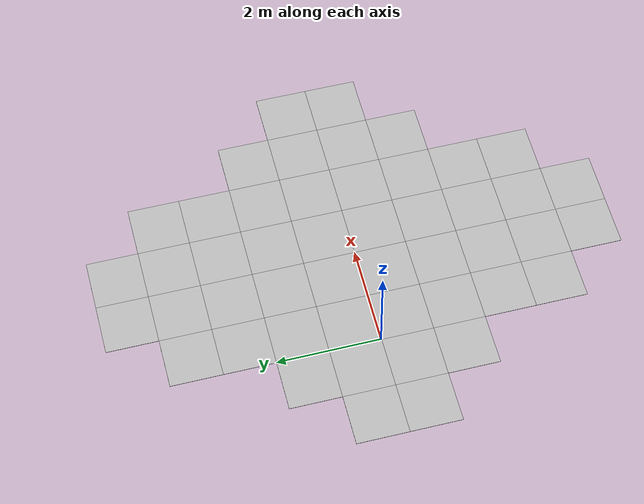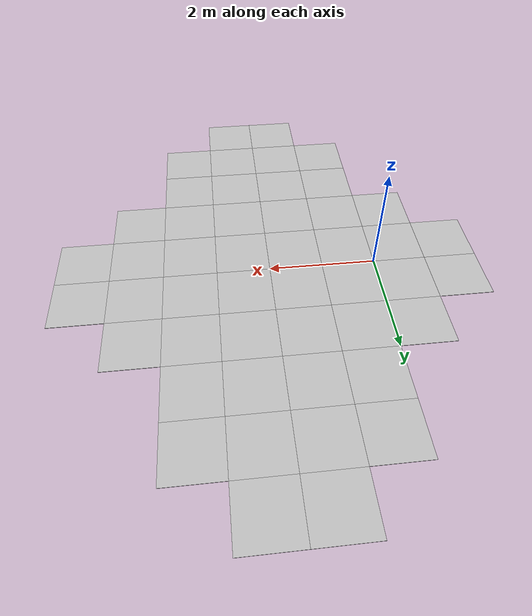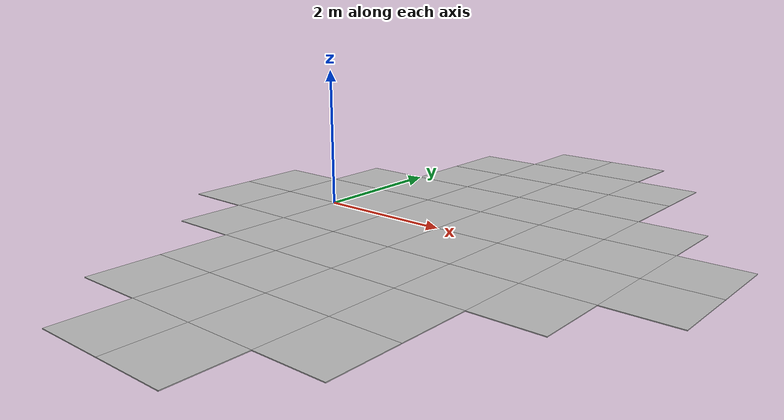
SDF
<sdf version="1.6">
 <world name="default">
  <light name="sun" type="directional">
   <pose>0 0 10 0 -0 0</pose>
   <diffuse>0.8 0.8 0.8 1</diffuse>
   <specular>0.1 0.1 0.1 1</specular>
   <attenuation>
    <range>1000</range>
    <constant>0.9</constant>
    <linear>0.01</linear>
    <quadratic>0.001</quadratic>
   </attenuation>
   <direction>-0.5 0.5 -1</direction>
  </light>
  <gravity>0 0 0</gravity>
  <magnetic_field>6e-06 2.3e-05 -4.2e-05</magnetic_field>
  <atmosphere type="adiabatic"/>
  <physics name="default_physics" default="0" type="ode">
   <max_step_size>0.001</max_step_size>
   <real_time_factor>1</real_time_factor>
   <real_time_update_rate>1000</real_time_update_rate>
  </physics>
  <scene><ambient>0.4 0.4 0.4 1</ambient><background>0.7 0.7 0.7 1</background><shadows>1</shadows></scene>
  <spherical_coordinates>
   <surface_model>EARTH_WGS84</surface_model>
   <latitude_deg>0</latitude_deg>
   <longitude_deg>0</longitude_deg>
   <elevation>0</elevation>
   <heading_deg>0</heading_deg>
  </spherical_coordinates>
  <model name="mud_box">
   <static>1</static>
   <link name="link">
    <collision name="collision"><geometry><box><size>4 4 0.01</size></box></geometry></collision>
    <visual name="visual_1">
     <pose>-0.5 0.5 0 0 -0 0</pose>
     <cast_shadows>0</cast_shadows>
     <geometry><box><size>1 1 0.01</size></box></geometry>
     <material>
      <script>
       <uri>model://brick_box_3x1x3/materials/scripts</uri>
       <uri>model://brick_box_3x1x3/materials/textures</uri>
       <name>BrickBox/Diffuse</name>
      </script>
     </material>
    </visual>
    <visual name="visual_2">
     <pose>0.5 0.5 0 0 -0 0</pose>
     <cast_shadows>0</cast_shadows>
     <geometry><box><size>1 1 0.01</size></box></geometry>
     <material>
      <script>
       <uri>model://brick_box_3x1x3/materials/scripts</uri>
       <uri>model://brick_box_3x1x3/materials/textures</uri>
       <name>BrickBox/Diffuse</name>
      </script>
     </material>
    </visual>
    <visual name="visual_3">
     <pose>0.5 -0.5 0 0 -0 0</pose>
     <cast_shadows>0</cast_shadows>
     <geometry><box><size>1 1 0.01</size></box></geometry>
     <material>
      <script>
       <uri>model://brick_box_3x1x3/materials/scripts</uri>
       <uri>model://brick_box_3x1x3/materials/textures</uri>
       <name>BrickBox/Diffuse</name>
      </script>
     </material>
    </visual>
    <visual name="visual_4">
     <pose>-0.5 -0.5 0 0 -0 0</pose>
     <cast_shadows>0</cast_shadows>
     <geometry><box><size>1 1 0.01</size></box></geometry>
     <material>
      <script>
       <uri>model://brick_box_3x1x3/materials/scripts</uri>
       <uri>model://brick_box_3x1x3/materials/textures</uri>
       <name>BrickBox/Diffuse</name>
      </script>
     </material>
    </visual>
    <visual name="visual_5">
     <pose>-1.5 0.5 0 0 -0 0</pose>
     <cast_shadows>0</cast_shadows>
     <geometry><box><size>1 1 0.01</size></box></geometry>
     <material>
      <script>
       <uri>model://brick_box_3x1x3/materials/scripts</uri>
       <uri>model://brick_box_3x1x3/materials/textures</uri>
       <name>BrickBox/Diffuse</name>
      </script>
     </material>
    </visual>
    <visual name="visual_6">
     <pose>0.5 -1.5 0 0 -0 0</pose>
     <cast_shadows>0</cast_shadows>
     <geometry><box><size>1 1 0.01</size></box></geometry>
     <material>
      <script>
       <uri>model://brick_box_3x1x3/materials/scripts</uri>
       <uri>model://brick_box_3x1x3/materials/textures</uri>
       <name>BrickBox/Diffuse</name>
      </script>
     </material>
    </visual>
    <visual name="visual_7">
     <pose>1.5 0.5 0 0 -0 0</pose>
     <cast_shadows>0</cast_shadows>
     <geometry><box><size>1 1 0.01</size></box></geometry>
     <material>
      <script>
       <uri>model://brick_box_3x1x3/materials/scripts</uri>
       <uri>model://brick_box_3x1x3/materials/textures</uri>
       <name>BrickBox/Diffuse</name>
      </script>
     </material>
    </visual>
    <visual name="visual_8">
     <pose>0.5 1.5 0 0 -0 0</pose>
     <cast_shadows>0</cast_shadows>
     <geometry><box><size>1 1 0.01</size></box></geometry>
     <material>
      <script>
       <uri>model://brick_box_3x1x3/materials/scripts</uri>
       <uri>model://brick_box_3x1x3/materials/textures</uri>
       <name>BrickBox/Diffuse</name>
      </script>
     </material>
    </visual>
    <visual name="visual_9">
     <pose>-1.5 -0.5 0 0 -0 0</pose>
     <cast_shadows>0</cast_shadows>
     <geometry><box><size>1 1 0.01</size></box></geometry>
     <material>
      <script>
       <uri>model://brick_box_3x1x3/materials/scripts</uri>
       <uri>model://brick_box_3x1x3/materials/textures</uri>
       <name>BrickBox/Diffuse</name>
      </script>
     </material>
    </visual>
    <visual name="visual_10">
     <pose>-0.5 -1.5 0 0 -0 0</pose>
     <cast_shadows>0</cast_shadows>
     <geometry><box><size>1 1 0.01</size></box></geometry>
     <material>
      <script>
       <uri>model://brick_box_3x1x3/materials/scripts</uri>
       <uri>model://brick_box_3x1x3/materials/textures</uri>
       <name>BrickBox/Diffuse</name>
      </script>
     </material>
    </visual>
    <visual name="visual_11">
     <pose>1.5 -0.5 0 0 -0 0</pose>
     <cast_shadows>0</cast_shadows>
     <geometry><box><size>1 1 0.01</size></box></geometry>
     <material>
      <script>
       <uri>model://brick_box_3x1x3/materials/scripts</uri>
       <uri>model://brick_box_3x1x3/materials/textures</uri>
       <name>BrickBox/Diffuse</name>
      </script>
     </material>
    </visual>
    <visual name="visual_12">
     <pose>-0.5 1.5 0 0 -0 0</pose>
     <cast_shadows>0</cast_shadows>
     <geometry><box><size>1 1 0.01</size></box></geometry>
     <material>
      <script>
       <uri>model://brick_box_3x1x3/materials/scripts</uri>
       <uri>model://brick_box_3x1x3/materials/textures</uri>
       <name>BrickBox/Diffuse</name>
      </script>
     </material>
    </visual>
   </link>
  </model>
  <model name="mud_box_clone">
   <static>1</static>
   <link name="link">
    <collision name="collision"><geometry><box><size>4 4 0.01</size></box></geometry></collision>
    <visual name="visual_1">
     <pose>-0.5 0.5 0 0 -0 0</pose>
     <cast_shadows>0</cast_shadows>
     <geometry><box><size>1 1 0.01</size></box></geometry>
     <material>
      <script>
       <uri>model://brick_box_3x1x3/materials/scripts</uri>
       <uri>model://brick_box_3x1x3/materials/textures</uri>
       <name>BrickBox/Diffuse</name>
      </script>
     </material>
    </visual>
    <visual name="visual_2">
     <pose>0.5 0.5 0 0 -0 0</pose>
     <cast_shadows>0</cast_shadows>
     <geometry><box><size>1 1 0.01</size></box></geometry>
     <material>
      <script>
       <uri>model://brick_box_3x1x3/materials/scripts</uri>
       <uri>model://brick_box_3x1x3/materials/textures</uri>
       <name>BrickBox/Diffuse</name>
      </script>
     </material>
    </visual>
    <visual name="visual_3">
     <pose>0.5 -0.5 0 0 -0 0</pose>
     <cast_shadows>0</cast_shadows>
     <geometry><box><size>1 1 0.01</size></box></geometry>
     <material>
      <script>
       <uri>model://brick_box_3x1x3/materials/scripts</uri>
       <uri>model://brick_box_3x1x3/materials/textures</uri>
       <name>BrickBox/Diffuse</name>
      </script>
     </material>
    </visual>
    <visual name="visual_4">
     <pose>-0.5 -0.5 0 0 -0 0</pose>
     <cast_shadows>0</cast_shadows>
     <geometry><box><size>1 1 0.01</size></box></geometry>
     <material>
      <script>
       <uri>model://brick_box_3x1x3/materials/scripts</uri>
       <uri>model://brick_box_3x1x3/materials/textures</uri>
       <name>BrickBox/Diffuse</name>
      </script>
     </material>
    </visual>
    <visual name="visual_5">
     <pose>-1.5 0.5 0 0 -0 0</pose>
     <cast_shadows>0</cast_shadows>
     <geometry><box><size>1 1 0.01</size></box></geometry>
     <material>
      <script>
       <uri>model://brick_box_3x1x3/materials/scripts</uri>
       <uri>model://brick_box_3x1x3/materials/textures</uri>
       <name>BrickBox/Diffuse</name>
      </script>
     </material>
    </visual>
    <visual name="visual_6">
     <pose>0.5 -1.5 0 0 -0 0</pose>
     <cast_shadows>0</cast_shadows>
     <geometry><box><size>1 1 0.01</size></box></geometry>
     <material>
      <script>
       <uri>model://brick_box_3x1x3/materials/scripts</uri>
       <uri>model://brick_box_3x1x3/materials/textures</uri>
       <name>BrickBox/Diffuse</name>
      </script>
     </material>
    </visual>
    <visual name="visual_7">
     <pose>1.5 0.5 0 0 -0 0</pose>
     <cast_shadows>0</cast_shadows>
     <geometry><box><size>1 1 0.01</size></box></geometry>
     <material>
      <script>
       <uri>model://brick_box_3x1x3/materials/scripts</uri>
       <uri>model://brick_box_3x1x3/materials/textures</uri>
       <name>BrickBox/Diffuse</name>
      </script>
     </material>
    </visual>
    <visual name="visual_8">
     <pose>0.5 1.5 0 0 -0 0</pose>
     <cast_shadows>0</cast_shadows>
     <geometry><box><size>1 1 0.01</size></box></geometry>
     <material>
      <script>
       <uri>model://brick_box_3x1x3/materials/scripts</uri>
       <uri>model://brick_box_3x1x3/materials/textures</uri>
       <name>BrickBox/Diffuse</name>
      </script>
     </material>
    </visual>
    <visual name="visual_9">
     <pose>-1.5 -0.5 0 0 -0 0</pose>
     <cast_shadows>0</cast_shadows>
     <geometry><box><size>1 1 0.01</size></box></geometry>
     <material>
      <script>
       <uri>model://brick_box_3x1x3/materials/scripts</uri>
       <uri>model://brick_box_3x1x3/materials/textures</uri>
       <name>BrickBox/Diffuse</name>
      </script>
     </material>
    </visual>
    <visual name="visual_10">
     <pose>-0.5 -1.5 0 0 -0 0</pose>
     <cast_shadows>0</cast_shadows>
     <geometry><box><size>1 1 0.01</size></box></geometry>
     <material>
      <script>
       <uri>model://brick_box_3x1x3/materials/scripts</uri>
       <uri>model://brick_box_3x1x3/materials/textures</uri>
       <name>BrickBox/Diffuse</name>
      </script>
     </material>
    </visual>
    <visual name="visual_11">
     <pose>1.5 -0.5 0 0 -0 0</pose>
     <cast_shadows>0</cast_shadows>
     <geometry><box><size>1 1 0.01</size></box></geometry>
     <material>
      <script>
       <uri>model://brick_box_3x1x3/materials/scripts</uri>
       <uri>model://brick_box_3x1x3/materials/textures</uri>
       <name>BrickBox/Diffuse</name>
      </script>
     </material>
    </visual>
    <visual name="visual_12">
     <pose>-0.5 1.5 0 0 -0 0</pose>
     <cast_shadows>0</cast_shadows>
     <geometry><box><size>1 1 0.01</size></box></geometry>
     <material>
      <script>
       <uri>model://brick_box_3x1x3/materials/scripts</uri>
       <uri>model://brick_box_3x1x3/materials/textures</uri>
       <name>BrickBox/Diffuse</name>
      </script>
     </material>
    </visual>
   </link>
   <pose>2 3 0 0 -0 0</pose>
  </model>
  <model name="mud_box_clone_0">
   <static>1</static>
   <link name="link">
    <collision name="collision"><geometry><box><size>4 4 0.01</size></box></geometry></collision>
    <visual name="visual_1">
     <pose>-0.5 0.5 0 0 -0 0</pose>
     <cast_shadows>0</cast_shadows>
     <geometry><box><size>1 1 0.01</size></box></geometry>
     <material>
      <script>
       <uri>model://brick_box_3x1x3/materials/scripts</uri>
       <uri>model://brick_box_3x1x3/materials/textures</uri>
       <name>BrickBox/Diffuse</name>
      </script>
     </material>
    </visual>
    <visual name="visual_2">
     <pose>0.5 0.5 0 0 -0 0</pose>
     <cast_shadows>0</cast_shadows>
     <geometry><box><size>1 1 0.01</size></box></geometry>
     <material>
      <script>
       <uri>model://brick_box_3x1x3/materials/scripts</uri>
       <uri>model://brick_box_3x1x3/materials/textures</uri>
       <name>BrickBox/Diffuse</name>
      </script>
     </material>
    </visual>
    <visual name="visual_3">
     <pose>0.5 -0.5 0 0 -0 0</pose>
     <cast_shadows>0</cast_shadows>
     <geometry><box><size>1 1 0.01</size></box></geometry>
     <material>
      <script>
       <uri>model://brick_box_3x1x3/materials/scripts</uri>
       <uri>model://brick_box_3x1x3/materials/textures</uri>
       <name>BrickBox/Diffuse</name>
      </script>
     </material>
    </visual>
    <visual name="visual_4">
     <pose>-0.5 -0.5 0 0 -0 0</pose>
     <cast_shadows>0</cast_shadows>
     <geometry><box><size>1 1 0.01</size></box></geometry>
     <material>
      <script>
       <uri>model://brick_box_3x1x3/materials/scripts</uri>
       <uri>model://brick_box_3x1x3/materials/textures</uri>
       <name>BrickBox/Diffuse</name>
      </script>
     </material>
    </visual>
    <visual name="visual_5">
     <pose>-1.5 0.5 0 0 -0 0</pose>
     <cast_shadows>0</cast_shadows>
     <geometry><box><size>1 1 0.01</size></box></geometry>
     <material>
      <script>
       <uri>model://brick_box_3x1x3/materials/scripts</uri>
       <uri>model://brick_box_3x1x3/materials/textures</uri>
       <name>BrickBox/Diffuse</name>
      </script>
     </material>
    </visual>
    <visual name="visual_6">
     <pose>0.5 -1.5 0 0 -0 0</pose>
     <cast_shadows>0</cast_shadows>
     <geometry><box><size>1 1 0.01</size></box></geometry>
     <material>
      <script>
       <uri>model://brick_box_3x1x3/materials/scripts</uri>
       <uri>model://brick_box_3x1x3/materials/textures</uri>
       <name>BrickBox/Diffuse</name>
      </script>
     </material>
    </visual>
    <visual name="visual_7">
     <pose>1.5 0.5 0 0 -0 0</pose>
     <cast_shadows>0</cast_shadows>
     <geometry><box><size>1 1 0.01</size></box></geometry>
     <material>
      <script>
       <uri>model://brick_box_3x1x3/materials/scripts</uri>
       <uri>model://brick_box_3x1x3/materials/textures</uri>
       <name>BrickBox/Diffuse</name>
      </script>
     </material>
    </visual>
    <visual name="visual_8">
     <pose>0.5 1.5 0 0 -0 0</pose>
     <cast_shadows>0</cast_shadows>
     <geometry><box><size>1 1 0.01</size></box></geometry>
     <material>
      <script>
       <uri>model://brick_box_3x1x3/materials/scripts</uri>
       <uri>model://brick_box_3x1x3/materials/textures</uri>
       <name>BrickBox/Diffuse</name>
      </script>
     </material>
    </visual>
    <visual name="visual_9">
     <pose>-1.5 -0.5 0 0 -0 0</pose>
     <cast_shadows>0</cast_shadows>
     <geometry><box><size>1 1 0.01</size></box></geometry>
     <material>
      <script>
       <uri>model://brick_box_3x1x3/materials/scripts</uri>
       <uri>model://brick_box_3x1x3/materials/textures</uri>
       <name>BrickBox/Diffuse</name>
      </script>
     </material>
    </visual>
    <visual name="visual_10">
     <pose>-0.5 -1.5 0 0 -0 0</pose>
     <cast_shadows>0</cast_shadows>
     <geometry><box><size>1 1 0.01</size></box></geometry>
     <material>
      <script>
       <uri>model://brick_box_3x1x3/materials/scripts</uri>
       <uri>model://brick_box_3x1x3/materials/textures</uri>
       <name>BrickBox/Diffuse</name>
      </script>
     </material>
    </visual>
    <visual name="visual_11">
     <pose>1.5 -0.5 0 0 -0 0</pose>
     <cast_shadows>0</cast_shadows>
     <geometry><box><size>1 1 0.01</size></box></geometry>
     <material>
      <script>
       <uri>model://brick_box_3x1x3/materials/scripts</uri>
       <uri>model://brick_box_3x1x3/materials/textures</uri>
       <name>BrickBox/Diffuse</name>
      </script>
     </material>
    </visual>
    <visual name="visual_12">
     <pose>-0.5 1.5 0 0 -0 0</pose>
     <cast_shadows>0</cast_shadows>
     <geometry><box><size>1 1 0.01</size></box></geometry>
     <material>
      <script>
       <uri>model://brick_box_3x1x3/materials/scripts</uri>
       <uri>model://brick_box_3x1x3/materials/textures</uri>
       <name>BrickBox/Diffuse</name>
      </script>
     </material>
    </visual>
   </link>
   <pose>4 0 0 0 -0 0</pose>
  </model>
  <model name="mud_box_clone_1">
   <static>1</static>
   <link name="link">
    <collision name="collision"><geometry><box><size>4 4 0.01</size></box></geometry></collision>
    <visual name="visual_1">
     <pose>-0.5 0.5 0 0 -0 0</pose>
     <cast_shadows>0</cast_shadows>
     <geometry><box><size>1 1 0.01</size></box></geometry>
     <material>
      <script>
       <uri>model://brick_box_3x1x3/materials/scripts</uri>
       <uri>model://brick_box_3x1x3/materials/textures</uri>
       <name>BrickBox/Diffuse</name>
      </script>
     </material>
    </visual>
    <visual name="visual_2">
     <pose>0.5 0.5 0 0 -0 0</pose>
     <cast_shadows>0</cast_shadows>
     <geometry><box><size>1 1 0.01</size></box></geometry>
     <material>
      <script>
       <uri>model://brick_box_3x1x3/materials/scripts</uri>
       <uri>model://brick_box_3x1x3/materials/textures</uri>
       <name>BrickBox/Diffuse</name>
      </script>
     </material>
    </visual>
    <visual name="visual_3">
     <pose>0.5 -0.5 0 0 -0 0</pose>
     <cast_shadows>0</cast_shadows>
     <geometry><box><size>1 1 0.01</size></box></geometry>
     <material>
      <script>
       <uri>model://brick_box_3x1x3/materials/scripts</uri>
       <uri>model://brick_box_3x1x3/materials/textures</uri>
       <name>BrickBox/Diffuse</name>
      </script>
     </material>
    </visual>
    <visual name="visual_4">
     <pose>-0.5 -0.5 0 0 -0 0</pose>
     <cast_shadows>0</cast_shadows>
     <geometry><box><size>1 1 0.01</size></box></geometry>
     <material>
      <script>
       <uri>model://brick_box_3x1x3/materials/scripts</uri>
       <uri>model://brick_box_3x1x3/materials/textures</uri>
       <name>BrickBox/Diffuse</name>
      </script>
     </material>
    </visual>
    <visual name="visual_5">
     <pose>-1.5 0.5 0 0 -0 0</pose>
     <cast_shadows>0</cast_shadows>
     <geometry><box><size>1 1 0.01</size></box></geometry>
     <material>
      <script>
       <uri>model://brick_box_3x1x3/materials/scripts</uri>
       <uri>model://brick_box_3x1x3/materials/textures</uri>
       <name>BrickBox/Diffuse</name>
      </script>
     </material>
    </visual>
    <visual name="visual_6">
     <pose>0.5 -1.5 0 0 -0 0</pose>
     <cast_shadows>0</cast_shadows>
     <geometry><box><size>1 1 0.01</size></box></geometry>
     <material>
      <script>
       <uri>model://brick_box_3x1x3/materials/scripts</uri>
       <uri>model://brick_box_3x1x3/materials/textures</uri>
       <name>BrickBox/Diffuse</name>
      </script>
     </material>
    </visual>
    <visual name="visual_7">
     <pose>1.5 0.5 0 0 -0 0</pose>
     <cast_shadows>0</cast_shadows>
     <geometry><box><size>1 1 0.01</size></box></geometry>
     <material>
      <script>
       <uri>model://brick_box_3x1x3/materials/scripts</uri>
       <uri>model://brick_box_3x1x3/materials/textures</uri>
       <name>BrickBox/Diffuse</name>
      </script>
     </material>
    </visual>
    <visual name="visual_8">
     <pose>0.5 1.5 0 0 -0 0</pose>
     <cast_shadows>0</cast_shadows>
     <geometry><box><size>1 1 0.01</size></box></geometry>
     <material>
      <script>
       <uri>model://brick_box_3x1x3/materials/scripts</uri>
       <uri>model://brick_box_3x1x3/materials/textures</uri>
       <name>BrickBox/Diffuse</name>
      </script>
     </material>
    </visual>
    <visual name="visual_9">
     <pose>-1.5 -0.5 0 0 -0 0</pose>
     <cast_shadows>0</cast_shadows>
     <geometry><box><size>1 1 0.01</size></box></geometry>
     <material>
      <script>
       <uri>model://brick_box_3x1x3/materials/scripts</uri>
       <uri>model://brick_box_3x1x3/materials/textures</uri>
       <name>BrickBox/Diffuse</name>
      </script>
     </material>
    </visual>
    <visual name="visual_10">
     <pose>-0.5 -1.5 0 0 -0 0</pose>
     <cast_shadows>0</cast_shadows>
     <geometry><box><size>1 1 0.01</size></box></geometry>
     <material>
      <script>
       <uri>model://brick_box_3x1x3/materials/scripts</uri>
       <uri>model://brick_box_3x1x3/materials/textures</uri>
       <name>BrickBox/Diffuse</name>
      </script>
     </material>
    </visual>
    <visual name="visual_11">
     <pose>1.5 -0.5 0 0 -0 0</pose>
     <cast_shadows>0</cast_shadows>
     <geometry><box><size>1 1 0.01</size></box></geometry>
     <material>
      <script>
       <uri>model://brick_box_3x1x3/materials/scripts</uri>
       <uri>model://brick_box_3x1x3/materials/textures</uri>
       <name>BrickBox/Diffuse</name>
      </script>
     </material>
    </visual>
    <visual name="visual_12">
     <pose>-0.5 1.5 0 0 -0 0</pose>
     <cast_shadows>0</cast_shadows>
     <geometry><box><size>1 1 0.01</size></box></geometry>
     <material>
      <script>
       <uri>model://brick_box_3x1x3/materials/scripts</uri>
       <uri>model://brick_box_3x1x3/materials/textures</uri>
       <name>BrickBox/Diffuse</name>
      </script>
     </material>
    </visual>
   </link>
   <pose>2 -3 0 0 -0 0</pose>
  </model>
 </world>
</sdf>
